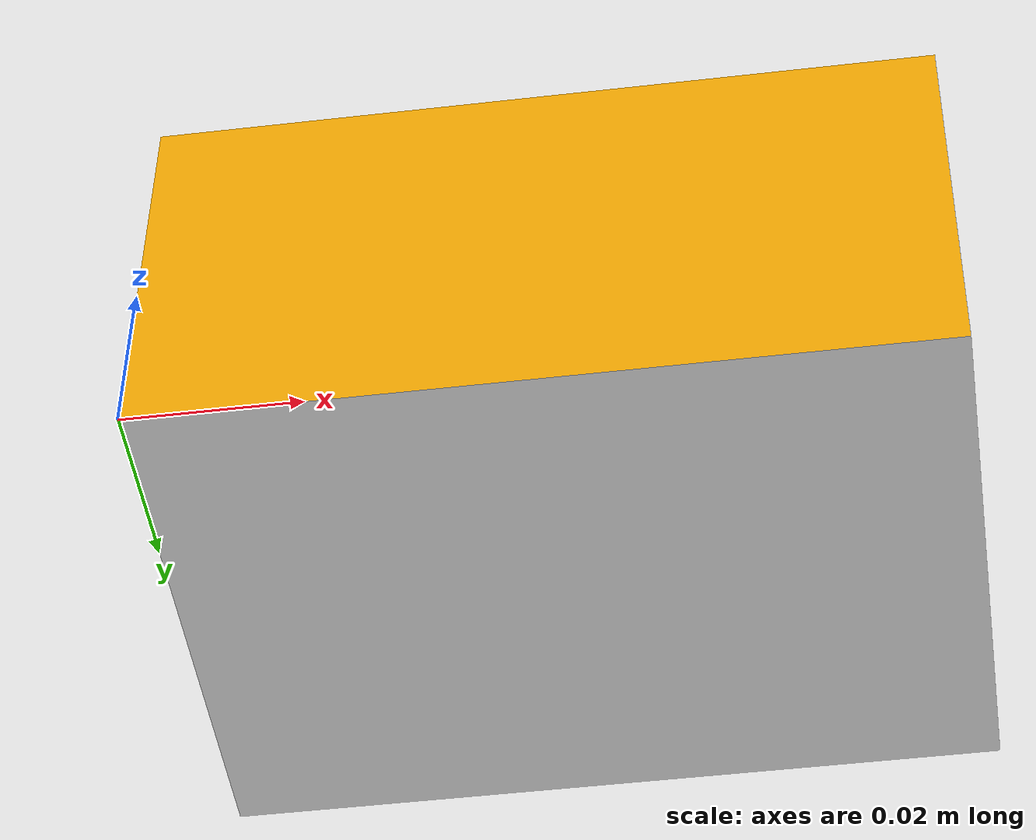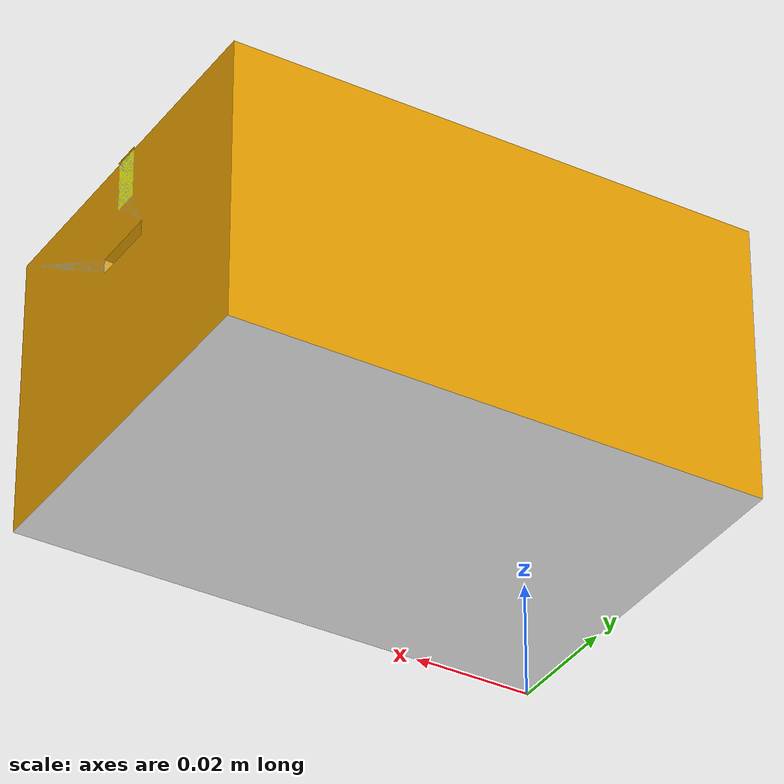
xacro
<?xml version="1.0"?>
<robot name="cardboard_box">

  <!-- Link with a DAE mesh -->
  <link name="cardboard_box_link">
    <!-- Visual Element -->
    <visual>
      <geometry>
        <mesh filename="$(find celconv_gazebo)/meshes/cardboard_box/model.dae" scale="0.2 0.2 0.2"/>
      </geometry>
    </visual>

    <!-- Collision Element -->
    <collision>
      <geometry>
        <mesh filename="$(find celconv_gazebo)/meshes/cardboard_box/model.dae" scale="0.2 0.2 0.2"/>
      </geometry>
    </collision>

    <!-- Inertial Element (required for dynamic simulation) -->
    <inertial>
      <mass value="1.0"/> <!-- Mass in kilograms -->
      <inertia ixx="0.01" ixy="0" ixz="0" iyy="0.01" iyz="0" izz="0.01"/> <!-- Inertia tensor components -->
    </inertial>
  </link>

</robot>
